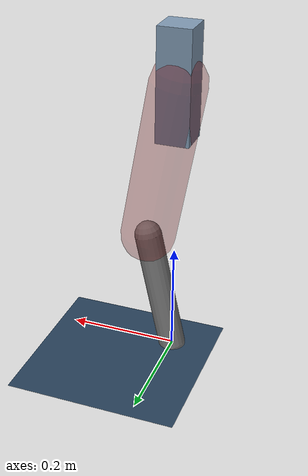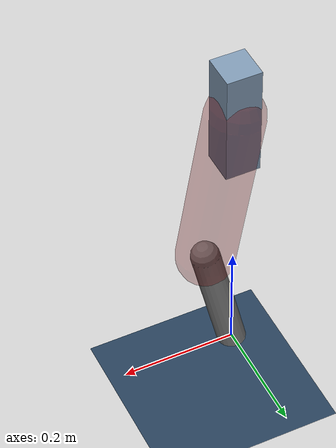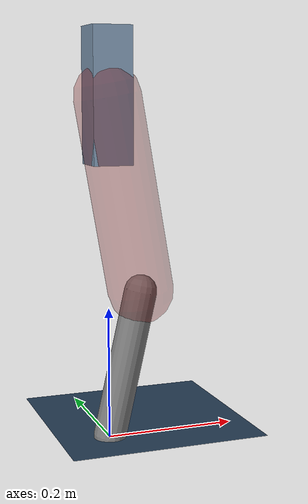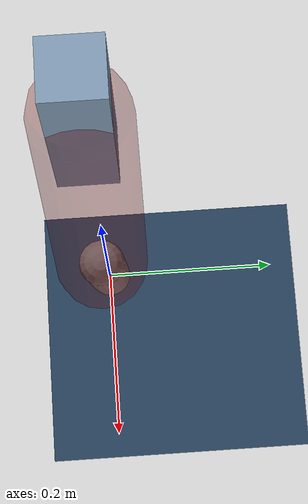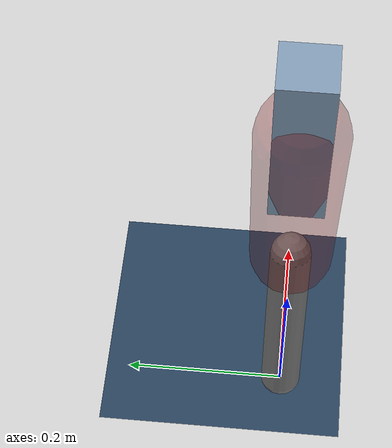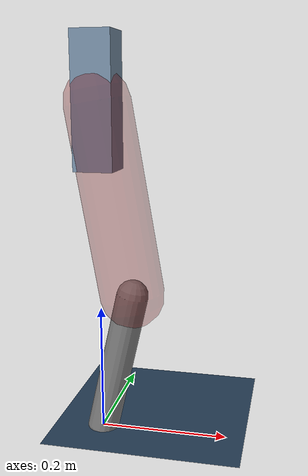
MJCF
<mujoco model="Hopper2D">
	<compiler inertiafromgeom="true" angle="radian" />
	<option timestep="0.001" integrator="implicit" cone="elliptic" solver="Newton" tolerance="1e-10" />

	<default>
		<geom contype="1" conaffinity="1" condim="3" friction="2 0.005 0.0001" solref="0.005 1" />
		<joint limited="true" damping="0.1" />
	</default>

	<asset>
		<texture name="skybox" type="skybox" builtin="gradient" rgb1=".4 .6 .8" rgb2="0 0 0" width="800" height="800" />
		<texture name="grid" type="2d" builtin="checker" rgb1=".1 .2 .3" rgb2=".2 .3 .4" width="300" height="300" mark="edge" markrgb=".2 .3 .4" />
		<material name="ground" texture="grid" texrepeat="1 1" texuniform="true" reflectance="0.1" />
		<material name="leg" rgba="0.5 0.6 0.7 1" />
	</asset>

	<worldbody>

		<geom name="floor" type="plane" size="5 5 0.25" material="ground" />

		<light directional="false" diffuse="0.8 0.8 0.8" specular="0.3 0.3 0.3" pos="0 0 2" dir="0 0 -1" />
		<light mode="targetbodycom" target="base" directional="false" diffuse="0.8 0.8 0.8" specular="0.3 0.3 0.3" pos="0 0 2" dir="0 0 -1" />

		<camera name="fixed" pos="0 -2 1" xyaxes="1 0 0 0 0 1" />
		<camera name="tracking" mode="trackcom" pos="0 -3 1" />

		<body name="root" pos="0 0 0.516348720669975">
			<joint name="slide_x" type="slide" axis="1 0 0" range="-100 100" />
			<joint name="slide_z" type="slide" axis="0 0 1" range="0 10" />

			<body name="base" pos="0 0 0">
				<geom name="torso" type="box" size="0.03 0.03 0.1" mass="1.827" material="leg" />

				<body name="link1" pos="0 0 0" euler="0 1.3993075280142404 0">
					<joint type="hinge" axis="0 -1 0" pos="0 0 0" name="hinge1" limited="true" range="-3.14 3.14" stiffness="0" damping="0.1" />
					<geom name="thigh" type="capsule" fromto="0 0 0 0.29666065932183067 0 0" size="0.05" rgba="0.5 0 0 0.3" mass="0.9796837801689429" />

					<body name="link2" pos="0.29666065932183067 0 0" euler="0 0.39372111874485516 0">
						<joint type="hinge" axis="0 -1 0" pos="0 0 0" name="hinge2" limited="true" range="-3.14 3.14" stiffness="0" damping="0.1" />
						<geom name="shank" type="capsule" fromto="0 0 0 0.22968806134814426 0 0" size="0.025" mass="0.4257504490785154" />

					</body>
				</body>
			</body>
		</body>
	</worldbody>

	<actuator>
		<motor name="torque1" joint="hinge1" ctrlrange="-65.55376546949775 65.55376546949775" ctrllimited="true" gear="1" />
		<motor name="torque2" joint="hinge2" ctrlrange="-77.39103656952649 77.39103656952649" ctrllimited="true" gear="1" />
	</actuator>
</mujoco>
